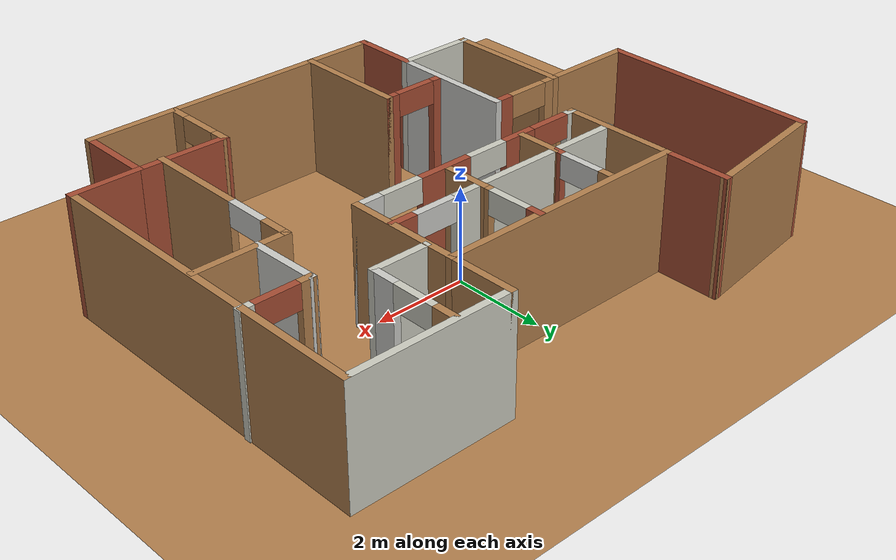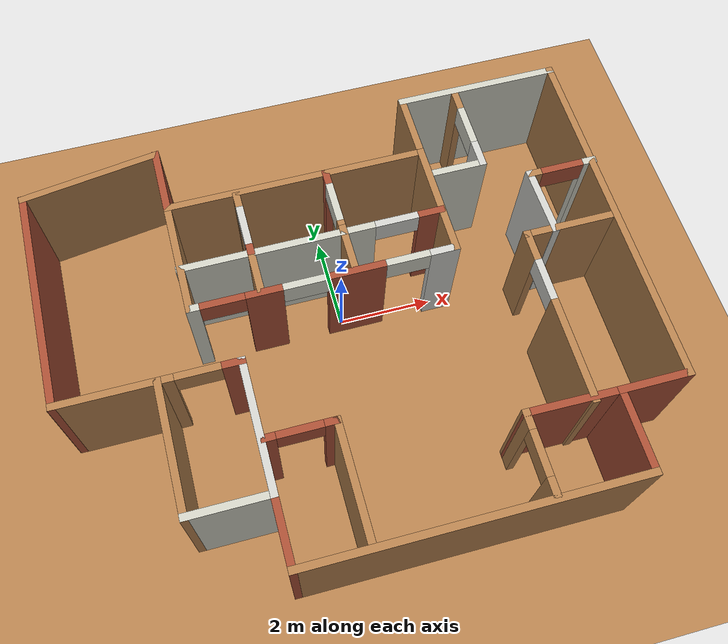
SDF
<sdf version="1.7">
 <world name="default">
  <plugin name="hello" filename="libhello.so"/>
  <light name="sun" type="directional">
   <pose>0 0 10 0 -0 0</pose>
   <diffuse>0.8 0.8 0.8 1</diffuse>
   <specular>0.2 0.2 0.2 1</specular>
   <attenuation>
    <range>1000</range>
    <constant>0.9</constant>
    <linear>0.01</linear>
    <quadratic>0.001</quadratic>
   </attenuation>
   <direction>-0.5 0.1 -0.9</direction>
   <spot><inner_angle>0</inner_angle><outer_angle>0</outer_angle><falloff>0</falloff></spot>
  </light>
  <model name="ground_plane">
   <static>1</static>
   <link name="link">
    <collision name="collision">
     <geometry><plane><normal>0 0 1</normal><size>16 14</size></plane></geometry>
     <surface><friction><ode><mu>100</mu><mu2>50</mu2></ode></friction></surface>
    </collision>
    <visual name="floor_tile_0">
     <cast_shadows>0</cast_shadows>
     <pose>-7.0 -6.5 0 0 -0 0</pose>
     <geometry><plane><normal>0 0 1</normal><size>2.0 2.0</size></plane></geometry>
     <material>
      <script><uri>file://media/materials/scripts/gazebo.material</uri><name>Gazebo/WoodFloor</name></script>
     </material>
    </visual>
    <visual name="floor_tile_1">
     <cast_shadows>0</cast_shadows>
     <pose>-5.0 -6.5 0 0 -0 0</pose>
     <geometry><plane><normal>0 0 1</normal><size>2.0 2.0</size></plane></geometry>
     <material>
      <script><uri>file://media/materials/scripts/gazebo.material</uri><name>Gazebo/WoodFloor</name></script>
     </material>
    </visual>
    <visual name="floor_tile_2">
     <cast_shadows>0</cast_shadows>
     <pose>-3.0 -6.5 0 0 -0 0</pose>
     <geometry><plane><normal>0 0 1</normal><size>2.0 2.0</size></plane></geometry>
     <material>
      <script><uri>file://media/materials/scripts/gazebo.material</uri><name>Gazebo/WoodFloor</name></script>
     </material>
    </visual>
    <visual name="floor_tile_3">
     <cast_shadows>0</cast_shadows>
     <pose>-1.0 -6.5 0 0 -0 0</pose>
     <geometry><plane><normal>0 0 1</normal><size>2.0 2.0</size></plane></geometry>
     <material>
      <script><uri>file://media/materials/scripts/gazebo.material</uri><name>Gazebo/WoodFloor</name></script>
     </material>
    </visual>
    <visual name="floor_tile_4">
     <cast_shadows>0</cast_shadows>
     <pose>1.0 -6.5 0 0 -0 0</pose>
     <geometry><plane><normal>0 0 1</normal><size>2.0 2.0</size></plane></geometry>
     <material>
      <script><uri>file://media/materials/scripts/gazebo.material</uri><name>Gazebo/WoodFloor</name></script>
     </material>
    </visual>
    <visual name="floor_tile_5">
     <cast_shadows>0</cast_shadows>
     <pose>3.0 -6.5 0 0 -0 0</pose>
     <geometry><plane><normal>0 0 1</normal><size>2.0 2.0</size></plane></geometry>
     <material>
      <script><uri>file://media/materials/scripts/gazebo.material</uri><name>Gazebo/WoodFloor</name></script>
     </material>
    </visual>
    <visual name="floor_tile_6">
     <cast_shadows>0</cast_shadows>
     <pose>5.0 -6.5 0 0 -0 0</pose>
     <geometry><plane><normal>0 0 1</normal><size>2.0 2.0</size></plane></geometry>
     <material>
      <script><uri>file://media/materials/scripts/gazebo.material</uri><name>Gazebo/WoodFloor</name></script>
     </material>
    </visual>
    <visual name="floor_tile_7">
     <cast_shadows>0</cast_shadows>
     <pose>7.0 -6.5 0 0 -0 0</pose>
     <geometry><plane><normal>0 0 1</normal><size>2.0 2.0</size></plane></geometry>
     <material>
      <script><uri>file://media/materials/scripts/gazebo.material</uri><name>Gazebo/WoodFloor</name></script>
     </material>
    </visual>
    <visual name="floor_tile_8">
     <cast_shadows>0</cast_shadows>
     <pose>-7.0 -4.5 0 0 -0 0</pose>
     <geometry><plane><normal>0 0 1</normal><size>2.0 2.0</size></plane></geometry>
     <material>
      <script><uri>file://media/materials/scripts/gazebo.material</uri><name>Gazebo/WoodFloor</name></script>
     </material>
    </visual>
    <visual name="floor_tile_9">
     <cast_shadows>0</cast_shadows>
     <pose>-5.0 -4.5 0 0 -0 0</pose>
     <geometry><plane><normal>0 0 1</normal><size>2.0 2.0</size></plane></geometry>
     <material>
      <script><uri>file://media/materials/scripts/gazebo.material</uri><name>Gazebo/WoodFloor</name></script>
     </material>
    </visual>
    <visual name="floor_tile_10">
     <cast_shadows>0</cast_shadows>
     <pose>-3.0 -4.5 0 0 -0 0</pose>
     <geometry><plane><normal>0 0 1</normal><size>2.0 2.0</size></plane></geometry>
     <material>
      <script><uri>file://media/materials/scripts/gazebo.material</uri><name>Gazebo/WoodFloor</name></script>
     </material>
    </visual>
    <visual name="floor_tile_11">
     <cast_shadows>0</cast_shadows>
     <pose>-1.0 -4.5 0 0 -0 0</pose>
     <geometry><plane><normal>0 0 1</normal><size>2.0 2.0</size></plane></geometry>
     <material>
      <script><uri>file://media/materials/scripts/gazebo.material</uri><name>Gazebo/WoodFloor</name></script>
     </material>
    </visual>
    <visual name="floor_tile_12">
     <cast_shadows>0</cast_shadows>
     <pose>1.0 -4.5 0 0 -0 0</pose>
     <geometry><plane><normal>0 0 1</normal><size>2.0 2.0</size></plane></geometry>
     <material>
      <script><uri>file://media/materials/scripts/gazebo.material</uri><name>Gazebo/WoodFloor</name></script>
     </material>
    </visual>
    <visual name="floor_tile_13">
     <cast_shadows>0</cast_shadows>
     <pose>3.0 -4.5 0 0 -0 0</pose>
     <geometry><plane><normal>0 0 1</normal><size>2.0 2.0</size></plane></geometry>
     <material>
      <script><uri>file://media/materials/scripts/gazebo.material</uri><name>Gazebo/WoodFloor</name></script>
     </material>
    </visual>
    <visual name="floor_tile_14">
     <cast_shadows>0</cast_shadows>
     <pose>5.0 -4.5 0 0 -0 0</pose>
     <geometry><plane><normal>0 0 1</normal><size>2.0 2.0</size></plane></geometry>
     <material>
      <script><uri>file://media/materials/scripts/gazebo.material</uri><name>Gazebo/WoodFloor</name></script>
     </material>
    </visual>
    <visual name="floor_tile_15">
     <cast_shadows>0</cast_shadows>
     <pose>7.0 -4.5 0 0 -0 0</pose>
     <geometry><plane><normal>0 0 1</normal><size>2.0 2.0</size></plane></geometry>
     <material>
      <script><uri>file://media/materials/scripts/gazebo.material</uri><name>Gazebo/WoodFloor</name></script>
     </material>
    </visual>
    <visual name="floor_tile_16">
     <cast_shadows>0</cast_shadows>
     <pose>-7.0 -2.5 0 0 -0 0</pose>
     <geometry><plane><normal>0 0 1</normal><size>2.0 2.0</size></plane></geometry>
     <material>
      <script><uri>file://media/materials/scripts/gazebo.material</uri><name>Gazebo/WoodFloor</name></script>
     </material>
    </visual>
    <visual name="floor_tile_17">
     <cast_shadows>0</cast_shadows>
     <pose>-5.0 -2.5 0 0 -0 0</pose>
     <geometry><plane><normal>0 0 1</normal><size>2.0 2.0</size></plane></geometry>
     <material>
      <script><uri>file://media/materials/scripts/gazebo.material</uri><name>Gazebo/WoodFloor</name></script>
     </material>
    </visual>
    <visual name="floor_tile_18">
     <cast_shadows>0</cast_shadows>
     <pose>-3.0 -2.5 0 0 -0 0</pose>
     <geometry><plane><normal>0 0 1</normal><size>2.0 2.0</size></plane></geometry>
     <material>
      <script><uri>file://media/materials/scripts/gazebo.material</uri><name>Gazebo/WoodFloor</name></script>
     </material>
    </visual>
    <visual name="floor_tile_19">
     <cast_shadows>0</cast_shadows>
     <pose>-1.0 -2.5 0 0 -0 0</pose>
     <geometry><plane><normal>0 0 1</normal><size>2.0 2.0</size></plane></geometry>
     <material>
      <script><uri>file://media/materials/scripts/gazebo.material</uri><name>Gazebo/WoodFloor</name></script>
     </material>
    </visual>
    <visual name="floor_tile_20">
     <cast_shadows>0</cast_shadows>
     <pose>1.0 -2.5 0 0 -0 0</pose>
     <geometry><plane><normal>0 0 1</normal><size>2.0 2.0</size></plane></geometry>
     <material>
      <script><uri>file://media/materials/scripts/gazebo.material</uri><name>Gazebo/WoodFloor</name></script>
     </material>
    </visual>
    <visual name="floor_tile_21">
     <cast_shadows>0</cast_shadows>
     <pose>3.0 -2.5 0 0 -0 0</pose>
     <geometry><plane><normal>0 0 1</normal><size>2.0 2.0</size></plane></geometry>
     <material>
      <script><uri>file://media/materials/scripts/gazebo.material</uri><name>Gazebo/WoodFloor</name></script>
     </material>
    </visual>
    <visual name="floor_tile_22">
     <cast_shadows>0</cast_shadows>
     <pose>5.0 -2.5 0 0 -0 0</pose>
     <geometry><plane><normal>0 0 1</normal><size>2.0 2.0</size></plane></geometry>
     <material>
      <script><uri>file://media/materials/scripts/gazebo.material</uri><name>Gazebo/WoodFloor</name></script>
     </material>
    </visual>
    <visual name="floor_tile_23">
     <cast_shadows>0</cast_shadows>
     <pose>7.0 -2.5 0 0 -0 0</pose>
     <geometry><plane><normal>0 0 1</normal><size>2.0 2.0</size></plane></geometry>
     <material>
      <script><uri>file://media/materials/scripts/gazebo.material</uri><name>Gazebo/WoodFloor</name></script>
     </material>
    </visual>
    <visual name="floor_tile_24">
     <cast_shadows>0</cast_shadows>
     <pose>-7.0 -0.5 0 0 -0 0</pose>
     <geometry><plane><normal>0 0 1</normal><size>2.0 2.0</size></plane></geometry>
     <material>
      <script><uri>file://media/materials/scripts/gazebo.material</uri><name>Gazebo/WoodFloor</name></script>
     </material>
    </visual>
    <visual name="floor_tile_25">
     <cast_shadows>0</cast_shadows>
     <pose>-5.0 -0.5 0 0 -0 0</pose>
     <geometry><plane><normal>0 0 1</normal><size>2.0 2.0</size></plane></geometry>
     <material>
      <script><uri>file://media/materials/scripts/gazebo.material</uri><name>Gazebo/WoodFloor</name></script>
     </material>
    </visual>
    <visual name="floor_tile_26">
     <cast_shadows>0</cast_shadows>
     <pose>-3.0 -0.5 0 0 -0 0</pose>
     <geometry><plane><normal>0 0 1</normal><size>2.0 2.0</size></plane></geometry>
     <material>
      <script><uri>file://media/materials/scripts/gazebo.material</uri><name>Gazebo/WoodFloor</name></script>
     </material>
    </visual>
    <visual name="floor_tile_27">
     <cast_shadows>0</cast_shadows>
     <pose>-1.0 -0.5 0 0 -0 0</pose>
     <geometry><plane><normal>0 0 1</normal><size>2.0 2.0</size></plane></geometry>
     <material>
      <script><uri>file://media/materials/scripts/gazebo.material</uri><name>Gazebo/WoodFloor</name></script>
     </material>
    </visual>
    <visual name="floor_tile_28">
     <cast_shadows>0</cast_shadows>
     <pose>1.0 -0.5 0 0 -0 0</pose>
     <geometry><plane><normal>0 0 1</normal><size>2.0 2.0</size></plane></geometry>
     <material>
      <script><uri>file://media/materials/scripts/gazebo.material</uri><name>Gazebo/WoodFloor</name></script>
     </material>
    </visual>
    <visual name="floor_tile_29">
     <cast_shadows>0</cast_shadows>
     <pose>3.0 -0.5 0 0 -0 0</pose>
     <geometry><plane><normal>0 0 1</normal><size>2.0 2.0</size></plane></geometry>
     <material>
      <script><uri>file://media/materials/scripts/gazebo.material</uri><name>Gazebo/WoodFloor</name></script>
     </material>
    </visual>
    <visual name="floor_tile_30">
     <cast_shadows>0</cast_shadows>
     <pose>5.0 -0.5 0 0 -0 0</pose>
     <geometry><plane><normal>0 0 1</normal><size>2.0 2.0</size></plane></geometry>
     <material>
      <script><uri>file://media/materials/scripts/gazebo.material</uri><name>Gazebo/WoodFloor</name></script>
     </material>
    </visual>
    <visual name="floor_tile_31">
     <cast_shadows>0</cast_shadows>
     <pose>7.0 -0.5 0 0 -0 0</pose>
     <geometry><plane><normal>0 0 1</normal><size>2.0 2.0</size></plane></geometry>
     <material>
      <script><uri>file://media/materials/scripts/gazebo.material</uri><name>Gazebo/WoodFloor</name></script>
     </material>
    </visual>
    <visual name="floor_tile_32">
     <cast_shadows>0</cast_shadows>
     <pose>-7.0 1.5 0 0 -0 0</pose>
     <geometry><plane><normal>0 0 1</normal><size>2.0 2.0</size></plane></geometry>
     <material>
      <script><uri>file://media/materials/scripts/gazebo.material</uri><name>Gazebo/WoodFloor</name></script>
     </material>
    </visual>
    <visual name="floor_tile_33">
     <cast_shadows>0</cast_shadows>
     <pose>-5.0 1.5 0 0 -0 0</pose>
     <geometry><plane><normal>0 0 1</normal><size>2.0 2.0</size></plane></geometry>
     <material>
      <script><uri>file://media/materials/scripts/gazebo.material</uri><name>Gazebo/WoodFloor</name></script>
     </material>
    </visual>
    <visual name="floor_tile_34">
     <cast_shadows>0</cast_shadows>
     <pose>-3.0 1.5 0 0 -0 0</pose>
     <geometry><plane><normal>0 0 1</normal><size>2.0 2.0</size></plane></geometry>
     <material>
      <script><uri>file://media/materials/scripts/gazebo.material</uri><name>Gazebo/WoodFloor</name></script>
     </material>
    </visual>
    <visual name="floor_tile_35">
     <cast_shadows>0</cast_shadows>
     <pose>-1.0 1.5 0 0 -0 0</pose>
     <geometry><plane><normal>0 0 1</normal><size>2.0 2.0</size></plane></geometry>
     <material>
      <script><uri>file://media/materials/scripts/gazebo.material</uri><name>Gazebo/WoodFloor</name></script>
     </material>
    </visual>
    <visual name="floor_tile_36">
     <cast_shadows>0</cast_shadows>
     <pose>1.0 1.5 0 0 -0 0</pose>
     <geometry><plane><normal>0 0 1</normal><size>2.0 2.0</size></plane></geometry>
     <material>
      <script><uri>file://media/materials/scripts/gazebo.material</uri><name>Gazebo/WoodFloor</name></script>
     </material>
    </visual>
    <visual name="floor_tile_37">
     <cast_shadows>0</cast_shadows>
     <pose>3.0 1.5 0 0 -0 0</pose>
     <geometry><plane><normal>0 0 1</normal><size>2.0 2.0</size></plane></geometry>
     <material>
      <script><uri>file://media/materials/scripts/gazebo.material</uri><name>Gazebo/WoodFloor</name></script>
     </material>
    </visual>
    <visual name="floor_tile_38">
     <cast_shadows>0</cast_shadows>
     <pose>5.0 1.5 0 0 -0 0</pose>
     <geometry><plane><normal>0 0 1</normal><size>2.0 2.0</size></plane></geometry>
     <material>
      <script><uri>file://media/materials/scripts/gazebo.material</uri><name>Gazebo/WoodFloor</name></script>
     </material>
    </visual>
    <visual name="floor_tile_39">
     <cast_shadows>0</cast_shadows>
     <pose>7.0 1.5 0 0 -0 0</pose>
     <geometry><plane><normal>0 0 1</normal><size>2.0 2.0</size></plane></geometry>
     <material>
      <script><uri>file://media/materials/scripts/gazebo.material</uri><name>Gazebo/WoodFloor</name></script>
     </material>
    </visual>
    <visual name="floor_tile_40">
     <cast_shadows>0</cast_shadows>
     <pose>-7.0 3.5 0 0 -0 0</pose>
     <geometry><plane><normal>0 0 1</normal><size>2.0 2.0</size></plane></geometry>
     <material>
      <script><uri>file://media/materials/scripts/gazebo.material</uri><name>Gazebo/WoodFloor</name></script>
     </material>
    </visual>
    <visual name="floor_tile_41">
     <cast_shadows>0</cast_shadows>
     <pose>-5.0 3.5 0 0 -0 0</pose>
     <geometry><plane><normal>0 0 1</normal><size>2.0 2.0</size></plane></geometry>
     <material>
      <script><uri>file://media/materials/scripts/gazebo.material</uri><name>Gazebo/WoodFloor</name></script>
     </material>
    </visual>
    <visual name="floor_tile_42">
     <cast_shadows>0</cast_shadows>
     <pose>-3.0 3.5 0 0 -0 0</pose>
     <geometry><plane><normal>0 0 1</normal><size>2.0 2.0</size></plane></geometry>
     <material>
      <script><uri>file://media/materials/scripts/gazebo.material</uri><name>Gazebo/WoodFloor</name></script>
     </material>
    </visual>
    <visual name="floor_tile_43">
     <cast_shadows>0</cast_shadows>
     <pose>-1.0 3.5 0 0 -0 0</pose>
     <geometry><plane><normal>0 0 1</normal><size>2.0 2.0</size></plane></geometry>
     <material>
      <script><uri>file://media/materials/scripts/gazebo.material</uri><name>Gazebo/WoodFloor</name></script>
     </material>
    </visual>
    <visual name="floor_tile_44">
     <cast_shadows>0</cast_shadows>
     <pose>1.0 3.5 0 0 -0 0</pose>
     <geometry><plane><normal>0 0 1</normal><size>2.0 2.0</size></plane></geometry>
     <material>
      <script><uri>file://media/materials/scripts/gazebo.material</uri><name>Gazebo/WoodFloor</name></script>
     </material>
    </visual>
    <visual name="floor_tile_45">
     <cast_shadows>0</cast_shadows>
     <pose>3.0 3.5 0 0 -0 0</pose>
     <geometry><plane><normal>0 0 1</normal><size>2.0 2.0</size></plane></geometry>
     <material>
      <script><uri>file://media/materials/scripts/gazebo.material</uri><name>Gazebo/WoodFloor</name></script>
     </material>
    </visual>
    <visual name="floor_tile_46">
     <cast_shadows>0</cast_shadows>
     <pose>5.0 3.5 0 0 -0 0</pose>
     <geometry><plane><normal>0 0 1</normal><size>2.0 2.0</size></plane></geometry>
     <material>
      <script><uri>file://media/materials/scripts/gazebo.material</uri><name>Gazebo/WoodFloor</name></script>
     </material>
    </visual>
    <visual name="floor_tile_47">
     <cast_shadows>0</cast_shadows>
     <pose>7.0 3.5 0 0 -0 0</pose>
     <geometry><plane><normal>0 0 1</normal><size>2.0 2.0</size></plane></geometry>
     <material>
      <script><uri>file://media/materials/scripts/gazebo.material</uri><name>Gazebo/WoodFloor</name></script>
     </material>
    </visual>
    <visual name="floor_tile_48">
     <cast_shadows>0</cast_shadows>
     <pose>-7.0 5.5 0 0 -0 0</pose>
     <geometry><plane><normal>0 0 1</normal><size>2.0 2.0</size></plane></geometry>
     <material>
      <script><uri>file://media/materials/scripts/gazebo.material</uri><name>Gazebo/WoodFloor</name></script>
     </material>
    </visual>
    <visual name="floor_tile_49">
     <cast_shadows>0</cast_shadows>
     <pose>-5.0 5.5 0 0 -0 0</pose>
     <geometry><plane><normal>0 0 1</normal><size>2.0 2.0</size></plane></geometry>
     <material>
      <script><uri>file://media/materials/scripts/gazebo.material</uri><name>Gazebo/WoodFloor</name></script>
     </material>
    </visual>
    <visual name="floor_tile_50">
     <cast_shadows>0</cast_shadows>
     <pose>-3.0 5.5 0 0 -0 0</pose>
     <geometry><plane><normal>0 0 1</normal><size>2.0 2.0</size></plane></geometry>
     <material>
      <script><uri>file://media/materials/scripts/gazebo.material</uri><name>Gazebo/WoodFloor</name></script>
     </material>
    </visual>
    <visual name="floor_tile_51">
     <cast_shadows>0</cast_shadows>
     <pose>-1.0 5.5 0 0 -0 0</pose>
     <geometry><plane><normal>0 0 1</normal><size>2.0 2.0</size></plane></geometry>
     <material>
      <script><uri>file://media/materials/scripts/gazebo.material</uri><name>Gazebo/WoodFloor</name></script>
     </material>
    </visual>
    <visual name="floor_tile_52">
     <cast_shadows>0</cast_shadows>
     <pose>1.0 5.5 0 0 -0 0</pose>
     <geometry><plane><normal>0 0 1</normal><size>2.0 2.0</size></plane></geometry>
     <material>
      <script><uri>file://media/materials/scripts/gazebo.material</uri><name>Gazebo/WoodFloor</name></script>
     </material>
    </visual>
    <visual name="floor_tile_53">
     <cast_shadows>0</cast_shadows>
     <pose>3.0 5.5 0 0 -0 0</pose>
     <geometry><plane><normal>0 0 1</normal><size>2.0 2.0</size></plane></geometry>
     <material>
      <script><uri>file://media/materials/scripts/gazebo.material</uri><name>Gazebo/WoodFloor</name></script>
     </material>
    </visual>
    <visual name="floor_tile_54">
     <cast_shadows>0</cast_shadows>
     <pose>5.0 5.5 0 0 -0 0</pose>
     <geometry><plane><normal>0 0 1</normal><size>2.0 2.0</size></plane></geometry>
     <material>
      <script><uri>file://media/materials/scripts/gazebo.material</uri><name>Gazebo/WoodFloor</name></script>
     </material>
    </visual>
    <visual name="floor_tile_55">
     <cast_shadows>0</cast_shadows>
     <pose>7.0 5.5 0 0 -0 0</pose>
     <geometry><plane><normal>0 0 1</normal><size>2.0 2.0</size></plane></geometry>
     <material>
      <script><uri>file://media/materials/scripts/gazebo.material</uri><name>Gazebo/WoodFloor</name></script>
     </material>
    </visual>
   </link>
  </model>
  <gravity>0 0 -9.8</gravity>
  <magnetic_field>6e-06 2.3e-05 -4.2e-05</magnetic_field>
  <atmosphere type="adiabatic"/>
  <physics name="default_physics" default="0" type="ode">
   <max_step_size>0.001</max_step_size>
   <real_time_factor>1</real_time_factor>
   <real_time_update_rate>1000</real_time_update_rate>
  </physics>
  <scene><ambient>0.4 0.4 0.4 1</ambient><background>0.7 0.7 0.7 1</background><shadows>1</shadows></scene>
  <spherical_coordinates>
   <surface_model>EARTH_WGS84</surface_model>
   <latitude_deg>0</latitude_deg>
   <longitude_deg>0</longitude_deg>
   <elevation>0</elevation>
   <heading_deg>0</heading_deg>
  </spherical_coordinates>
  <model name="office">
   <pose>-0.08568 -0.88911 0 0 -0 0</pose>
   <link name="Wall_0">
    <collision name="Wall_0_Collision">
     <geometry><box><size>4.75 0.15 2.5</size></box></geometry>
     <pose>0 0 1.25 0 -0 0</pose>
    </collision>
    <visual name="Wall_0_Visual">
     <pose>0 0 1.25 0 -0 0</pose>
     <geometry><box><size>4.75 0.15 2.5</size></box></geometry>
     <material>
      <script><uri>file://media/materials/scripts/gazebo.material</uri><name>Gazebo/Bricks</name></script>
      <ambient>0.78 0.56 0.42 1</ambient>
     </material>
     <meta><layer>0</layer></meta>
    </visual>
    <pose>-5.75692 1.77007 0 0 -0 1.5708</pose>
   </link>
   <link name="Wall_10">
    <collision name="Wall_10_Collision">
     <geometry><box><size>1.5 0.15 2.5</size></box></geometry>
     <pose>0 0 1.25 0 -0 0</pose>
    </collision>
    <visual name="Wall_10_Visual">
     <pose>0 0 1.25 0 -0 0</pose>
     <geometry><box><size>1.5 0.15 2.5</size></box></geometry>
     <material>
      <script><uri>file://media/materials/scripts/gazebo.material</uri><name>Gazebo/Bricks</name></script>
      <ambient>0.78 0.56 0.42 1</ambient>
     </material>
     <meta><layer>0</layer></meta>
    </visual>
    <pose>-2.21002 -3.80493 0 0 -0 1.5708</pose>
   </link>
   <link name="Wall_11">
    <collision name="Wall_11_Collision">
     <geometry><box><size>1.75 0.15 2.5</size></box></geometry>
     <pose>0 0 1.25 0 -0 0</pose>
    </collision>
    <visual name="Wall_11_Visual">
     <pose>0 0 1.25 0 -0 0</pose>
     <geometry><box><size>1.75 0.15 2.5</size></box></geometry>
     <material>
      <script><uri>file://media/materials/scripts/gazebo.material</uri><name>Gazebo/PaintedWall</name></script>
      <ambient>0.95 0.90 0.85 1</ambient>
     </material>
     <meta><layer>0</layer></meta>
    </visual>
    <pose>-3.01002 -3.12993 0 0 -0 3.14159</pose>
   </link>
   <link name="Wall_12">
    <collision name="Wall_12_Collision">
     <geometry><box><size>2.75 0.15 2.5</size></box></geometry>
     <pose>0 0 1.25 0 -0 0</pose>
    </collision>
    <visual name="Wall_12_Visual">
     <pose>0 0 1.25 0 -0 0</pose>
     <geometry><box><size>2.75 0.15 2.5</size></box></geometry>
     <material>
      <script><uri>file://media/materials/scripts/gazebo.material</uri><name>Gazebo/Wood</name></script>
      <ambient>0.91 0.76 0.55 1</ambient>
     </material>
     <meta><layer>0</layer></meta>
    </visual>
    <pose>-3.81002 -1.82993 0 0 -0 1.5708</pose>
   </link>
   <link name="Wall_13">
    <collision name="Wall_13_Collision">
     <geometry><box><size>2.10187 0.15 2.5</size></box></geometry>
     <pose>0 0 1.25 0 -0 0</pose>
    </collision>
    <visual name="Wall_13_Visual">
     <pose>0 0 1.25 0 -0 0</pose>
     <geometry><box><size>2.10187 0.15 2.5</size></box></geometry>
     <material>
      <script><uri>file://media/materials/scripts/gazebo.material</uri><name>Gazebo/Wood</name></script>
      <ambient>0.91 0.76 0.55 1</ambient>
     </material>
     <meta><layer>0</layer></meta>
    </visual>
    <pose>-4.78595 -0.529931 0 0 -0 3.14159</pose>
   </link>
   <link name="Wall_17">
    <collision name="Wall_17_Collision">
     <geometry><box><size>2.97536 0.15 2.5</size></box></geometry>
     <pose>0 0 1.25 0 -0 0</pose>
    </collision>
    <visual name="Wall_17_Visual">
     <pose>0 0 1.25 0 -0 0</pose>
     <geometry><box><size>2.97536 0.15 2.5</size></box></geometry>
     <material>
      <script><uri>file://media/materials/scripts/gazebo.material</uri><name>Gazebo/Wood</name></script>
      <ambient>0.91 0.76 0.55 1</ambient>
     </material>
     <meta><layer>0</layer></meta>
    </visual>
    <pose>-4.35847 4.27007 0 0 0 -2.99954</pose>
   </link>
   <link name="Wall_2">
    <collision name="Wall_2_Collision">
     <geometry><box><size>1.5 0.15 2.5</size></box></geometry>
     <pose>0 0 1.25 0 -0 0</pose>
    </collision>
    <visual name="Wall_2_Visual">
     <pose>0 0 1.25 0 -0 0</pose>
     <geometry><box><size>1.5 0.15 2.5</size></box></geometry>
     <material>
      <script><uri>file://media/materials/scripts/gazebo.material</uri><name>Gazebo/Bricks</name></script>
      <ambient>0.78 0.56 0.42 1</ambient>
     </material>
     <meta><layer>0</layer></meta>
    </visual>
    <pose>-2.96002 3.79507 0 0 0 -1.5708</pose>
   </link>
   <link name="Wall_21">
    <pose>-3.01002 -0.529931 0 0 -0 0</pose>
    <visual name="Wall_21_Visual_0">
     <pose>-0.682654 0 1.25 0 -0 0</pose>
     <geometry><box><size>0.384693 0.15 2.5</size></box></geometry>
     <material>
      <script><uri>file://media/materials/scripts/gazebo.material</uri><name>Gazebo/WoodFloor</name></script>
      <ambient>0.80 0.65 0.45 1</ambient>
     </material>
     <meta><layer>0</layer></meta>
    </visual>
    <collision name="Wall_21_Collision_0">
     <geometry><box><size>0.384693 0.15 2.5</size></box></geometry>
     <pose>-0.682654 0 1.25 0 -0 0</pose>
    </collision>
    <visual name="Wall_21_Visual_1">
     <pose>0.642346 0 1.25 0 -0 0</pose>
     <geometry><box><size>0.465307 0.15 2.5</size></box></geometry>
     <material>
      <script><uri>file://media/materials/scripts/gazebo.material</uri><name>Gazebo/Bricks</name></script>
      <ambient>0.78 0.56 0.42 1</ambient>
     </material>
     <meta><layer>0</layer></meta>
    </visual>
    <collision name="Wall_21_Collision_1">
     <geometry><box><size>0.465307 0.15 2.5</size></box></geometry>
     <pose>0.642346 0 1.25 0 -0 0</pose>
    </collision>
    <visual name="Wall_21_Visual_2">
     <pose>-0.040307 0 2.25 0 -0 0</pose>
     <geometry><box><size>0.9 0.15 0.5</size></box></geometry>
     <material>
      <script><uri>file://media/materials/scripts/gazebo.material</uri><name>Gazebo/WoodFloor</name></script>
      <ambient>0.80 0.65 0.45 1</ambient>
     </material>
     <meta><layer>0</layer></meta>
    </visual>
    <collision name="Wall_21_Collision_2">
     <geometry><box><size>0.9 0.15 0.5</size></box></geometry>
     <pose>-0.040307 0 2.25 0 -0 0</pose>
    </collision>
   </link>
   <link name="Wall_22">
    <collision name="Wall_22_Collision">
     <geometry><box><size>2.75 0.15 2.5</size></box></geometry>
     <pose>0 0 1.25 0 -0 0</pose>
    </collision>
    <visual name="Wall_22_Visual">
     <pose>0 0 1.25 0 -0 0</pose>
     <geometry><box><size>2.75 0.15 2.5</size></box></geometry>
     <material>
      <script><uri>file://media/materials/scripts/gazebo.material</uri><name>Gazebo/CeilingTiled</name></script>
      <ambient>0.85 0.85 0.85 1</ambient>
     </material>
     <meta><layer>0</layer></meta>
    </visual>
    <pose>-2.21002 -1.82993 0 0 0 -1.5708</pose>
   </link>
   <link name="Wall_24">
    <pose>-1.46934 -2.107 0 0 -0 0</pose>
    <visual name="Wall_24_Visual_0">
     <pose>-0.609939 0 1.25 0 -0 0</pose>
     <geometry><box><size>0.280122 0.15 2.5</size></box></geometry>
     <material>
      <script><uri>file://media/materials/scripts/gazebo.material</uri><name>Gazebo/Bricks</name></script>
      <ambient>0.78 0.56 0.42 1</ambient>
     </material>
     <meta><layer>0</layer></meta>
    </visual>
    <collision name="Wall_24_Collision_0">
     <geometry><box><size>0.280122 0.15 2.5</size></box></geometry>
     <pose>-0.609939 0 1.25 0 -0 0</pose>
    </collision>
    <visual name="Wall_24_Visual_1">
     <pose>0.590061 0 1.25 0 -0 0</pose>
     <geometry><box><size>0.319878 0.15 2.5</size></box></geometry>
     <material>
      <script><uri>file://media/materials/scripts/gazebo.material</uri><name>Gazebo/Bricks</name></script>
      <ambient>0.78 0.56 0.42 1</ambient>
     </material>
     <meta><layer>0</layer></meta>
    </visual>
    <collision name="Wall_24_Collision_1">
     <geometry><box><size>0.319878 0.15 2.5</size></box></geometry>
     <pose>0.590061 0 1.25 0 -0 0</pose>
    </collision>
    <visual name="Wall_24_Visual_2">
     <pose>-0.019878 0 2.25 0 -0 0</pose>
     <geometry><box><size>0.9 0.15 0.5</size></box></geometry>
     <material>
      <script><uri>file://media/materials/scripts/gazebo.material</uri><name>Gazebo/Bricks</name></script>
      <ambient>0.78 0.56 0.42 1</ambient>
     </material>
     <meta><layer>0</layer></meta>
    </visual>
    <collision name="Wall_24_Collision_2">
     <geometry><box><size>0.9 0.15 0.5</size></box></geometry>
     <pose>-0.019878 0 2.25 0 -0 0</pose>
    </collision>
   </link>
   <link name="Wall_25">
    <collision name="Wall_25_Collision">
     <geometry><box><size>2.5 0.15 2.5</size></box></geometry>
     <pose>0 0 1.25 0 -0 0</pose>
    </collision>
    <visual name="Wall_25_Visual">
     <pose>0 0 1.25 0 -0 0</pose>
     <geometry><box><size>2.5 0.15 2.5</size></box></geometry>
     <material>
      <script><uri>file://media/materials/scripts/gazebo.material</uri><name>Gazebo/Wood</name></script>
      <ambient>0.91 0.76 0.55 1</ambient>
     </material>
     <meta><layer>0</layer></meta>
    </visual>
    <pose>-0.794339 -3.282 0 0 0 -1.5708</pose>
   </link>
   <link name="Wall_27">
    <pose>2.54652 -3.6539 0 0 -0 1.5708</pose>
    <visual name="Wall_27_Visual_0">
     <pose>-0.65023 0 1.25 0 -0 0</pose>
     <geometry><box><size>0.449541 0.15 2.5</size></box></geometry>
     <material>
      <script><uri>file://media/materials/scripts/gazebo.material</uri><name>Gazebo/Wood</name></script>
      <ambient>0.91 0.76 0.55 1</ambient>
     </material>
     <meta><layer>0</layer></meta>
    </visual>
    <collision name="Wall_27_Collision_0">
     <geometry><box><size>0.449541 0.15 2.5</size></box></geometry>
     <pose>-0.65023 0 1.25 0 -0 0</pose>
    </collision>
    <visual name="Wall_27_Visual_1">
     <pose>0.67477 0 1.25 0 -0 0</pose>
     <geometry><box><size>0.400459 0.15 2.5</size></box></geometry>
     <material>
      <script><uri>file://media/materials/scripts/gazebo.material</uri><name>Gazebo/WoodFloor</name></script>
      <ambient>0.80 0.65 0.45 1</ambient>
     </material>
     <meta><layer>0</layer></meta>
    </visual>
    <collision name="Wall_27_Collision_1">
     <geometry><box><size>0.400459 0.15 2.5</size></box></geometry>
     <pose>0.67477 0 1.25 0 -0 0</pose>
    </collision>
    <visual name="Wall_27_Visual_2">
     <pose>0.024541 0 2.25 0 -0 0</pose>
     <geometry><box><size>0.9 0.15 0.5</size></box></geometry>
     <material>
      <script><uri>file://media/materials/scripts/gazebo.material</uri><name>Gazebo/WoodFloor</name></script>
      <ambient>0.80 0.65 0.45 1</ambient>
     </material>
     <meta><layer>0</layer></meta>
    </visual>
    <collision name="Wall_27_Collision_2">
     <geometry><box><size>0.9 0.15 0.5</size></box></geometry>
     <pose>0.024541 0 2.25 0 -0 0</pose>
    </collision>
   </link>
   <link name="Wall_28">
    <collision name="Wall_28_Collision">
     <geometry><box><size>1.99365 0.15 2.5</size></box></geometry>
     <pose>0 0 1.25 0 -0 0</pose>
    </collision>
    <visual name="Wall_28_Visual">
     <pose>0 0 1.25 0 -0 0</pose>
     <geometry><box><size>1.99365 0.15 2.5</size></box></geometry>
     <material>
      <script><uri>file://media/materials/scripts/gazebo.material</uri><name>Gazebo/Bricks</name></script>
      <ambient>0.78 0.56 0.42 1</ambient>
     </material>
     <meta><layer>0</layer></meta>
    </visual>
    <pose>3.46825 -2.86691 0 0 0 -0.014121</pose>
   </link>
   <link name="Wall_3">
    <collision name="Wall_3_Collision">
     <geometry><box><size>5.5 0.15 2.5</size></box></geometry>
     <pose>0 0 1.25 0 -0 0</pose>
    </collision>
    <visual name="Wall_3_Visual">
     <pose>0 0 1.25 0 -0 0</pose>
     <geometry><box><size>5.5 0.15 2.5</size></box></geometry>
     <material>
      <script><uri>file://media/materials/scripts/gazebo.material</uri><name>Gazebo/WoodFloor</name></script>
      <ambient>0.80 0.65 0.45 1</ambient>
     </material>
     <meta><layer>0</layer></meta>
    </visual>
    <pose>-0.285016 3.12007 0 0 -0 0</pose>
   </link>
   <link name="Wall_30">
    <pose>3.8558 -1.1198 0 0 -0 1.5708</pose>
    <visual name="Wall_30_Visual_0">
     <pose>-0.78578 0 1.25 0 -0 0</pose>
     <geometry><box><size>2.17844 0.15 2.5</size></box></geometry>
     <material>
      <script><uri>file://media/materials/scripts/gazebo.material</uri><name>Gazebo/Wood</name></script>
      <ambient>0.91 0.76 0.55 1</ambient>
     </material>
     <meta><layer>0</layer></meta>
    </visual>
    <collision name="Wall_30_Collision_0">
     <geometry><box><size>2.17844 0.15 2.5</size></box></geometry>
     <pose>-0.78578 0 1.25 0 -0 0</pose>
    </collision>
    <visual name="Wall_30_Visual_1">
     <pose>1.53922 0 1.25 0 -0 0</pose>
     <geometry><box><size>0.671559 0.15 2.5</size></box></geometry>
     <material>
      <script><uri>file://media/materials/scripts/gazebo.material</uri><name>Gazebo/WoodFloor</name></script>
      <ambient>0.80 0.65 0.45 1</ambient>
     </material>
     <meta><layer>0</layer></meta>
    </visual>
    <collision name="Wall_30_Collision_1">
     <geometry><box><size>0.671559 0.15 2.5</size></box></geometry>
     <pose>1.53922 0 1.25 0 -0 0</pose>
    </collision>
    <visual name="Wall_30_Visual_2">
     <pose>0.753441 0 2.25 0 -0 0</pose>
     <geometry><box><size>0.9 0.15 0.5</size></box></geometry>
     <material>
      <script><uri>file://media/materials/scripts/gazebo.material</uri><name>Gazebo/CeilingTiled</name></script>
      <ambient>0.85 0.85 0.85 1</ambient>
     </material>
     <meta><layer>0</layer></meta>
    </visual>
    <collision name="Wall_30_Collision_2">
     <geometry><box><size>0.9 0.15 0.5</size></box></geometry>
     <pose>0.753441 0 2.25 0 -0 0</pose>
    </collision>
   </link>
   <link name="Wall_31">
    <collision name="Wall_31_Collision">
     <geometry><box><size>2 0.15 2.5</size></box></geometry>
     <pose>0 0 1.25 0 -0 0</pose>
    </collision>
    <visual name="Wall_31_Visual">
     <pose>0 0 1.25 0 -0 0</pose>
     <geometry><box><size>2 0.15 2.5</size></box></geometry>
     <material>
      <script><uri>file://media/materials/scripts/gazebo.material</uri><name>Gazebo/Wood</name></script>
      <ambient>0.91 0.76 0.55 1</ambient>
     </material>
     <meta><layer>0</layer></meta>
    </visual>
    <pose>4.7808 0.680202 0 0 -0 0</pose>
   </link>
   <link name="Wall_33">
    <collision name="Wall_33_Collision">
     <geometry><box><size>1.5 0.15 2.5</size></box></geometry>
     <pose>0 0 1.25 0 -0 0</pose>
    </collision>
    <visual name="Wall_33_Visual">
     <pose>0 0 1.25 0 -0 0</pose>
     <geometry><box><size>1.5 0.15 2.5</size></box></geometry>
     <material>
      <script><uri>file://media/materials/scripts/gazebo.material</uri><name>Gazebo/CeilingTiled</name></script>
      <ambient>0.85 0.85 0.85 1</ambient>
     </material>
     <meta><layer>0</layer></meta>
    </visual>
    <pose>4.41678 1.34607 0 0 -0 1.5967</pose>
   </link>
   <link name="Wall_34">
    <pose>5.09178 2.02107 0 0 -0 0</pose>
    <visual name="Wall_34_Visual_0">
     <pose>-0.597678 0 1.25 0 -0 0</pose>
     <geometry><box><size>0.304643 0.15 2.5</size></box></geometry>
     <material>
      <script><uri>file://media/materials/scripts/gazebo.material</uri><name>Gazebo/WoodFloor</name></script>
      <ambient>0.80 0.65 0.45 1</ambient>
     </material>
     <meta><layer>0</layer></meta>
    </visual>
    <collision name="Wall_34_Collision_0">
     <geometry><box><size>0.304643 0.15 2.5</size></box></geometry>
     <pose>-0.597678 0 1.25 0 -0 0</pose>
    </collision>
    <visual name="Wall_34_Visual_1">
     <pose>0.602322 0 1.25 0 -0 0</pose>
     <geometry><box><size>0.295357 0.15 2.5</size></box></geometry>
     <material>
      <script><uri>file://media/materials/scripts/gazebo.material</uri><name>Gazebo/PaintedWall</name></script>
      <ambient>0.95 0.90 0.85 1</ambient>
     </material>
     <meta><layer>0</layer></meta>
    </visual>
    <collision name="Wall_34_Collision_1">
     <geometry><box><size>0.295357 0.15 2.5</size></box></geometry>
     <pose>0.602322 0 1.25 0 -0 0</pose>
    </collision>
    <visual name="Wall_34_Visual_2">
     <pose>0.004643 0 2.25 0 -0 0</pose>
     <geometry><box><size>0.9 0.15 0.5</size></box></geometry>
     <material>
      <script><uri>file://media/materials/scripts/gazebo.material</uri><name>Gazebo/Bricks</name></script>
      <ambient>0.78 0.56 0.42 1</ambient>
     </material>
     <meta><layer>0</layer></meta>
    </visual>
    <collision name="Wall_34_Collision_2">
     <geometry><box><size>0.9 0.15 0.5</size></box></geometry>
     <pose>0.004643 0 2.25 0 -0 0</pose>
    </collision>
   </link>
   <link name="Wall_36">
    <pose>3.54343 3.47496 0 0 0 -1.5708</pose>
    <visual name="Wall_36_Visual_0">
     <pose>-0.754697 0 1.25 0 -0 0</pose>
     <geometry><box><size>0.490606 0.15 2.5</size></box></geometry>
     <material>
      <script><uri>file://media/materials/scripts/gazebo.material</uri><name>Gazebo/Wood</name></script>
      <ambient>0.91 0.76 0.55 1</ambient>
     </material>
     <meta><layer>0</layer></meta>
    </visual>
    <collision name="Wall_36_Collision_0">
     <geometry><box><size>0.490606 0.15 2.5</size></box></geometry>
     <pose>-0.754697 0 1.25 0 -0 0</pose>
    </collision>
    <visual name="Wall_36_Visual_1">
     <pose>0.695303 0 1.25 0 -0 0</pose>
     <geometry><box><size>0.609394 0.15 2.5</size></box></geometry>
     <material>
      <script><uri>file://media/materials/scripts/gazebo.material</uri><name>Gazebo/CeilingTiled</name></script>
      <ambient>0.85 0.85 0.85 1</ambient>
     </material>
     <meta><layer>0</layer></meta>
    </visual>
    <collision name="Wall_36_Collision_1">
     <geometry><box><size>0.609394 0.15 2.5</size></box></geometry>
     <pose>0.695303 0 1.25 0 -0 0</pose>
    </collision>
    <visual name="Wall_36_Visual_2">
     <pose>-0.059394 0 2.25 0 -0 0</pose>
     <geometry><box><size>0.9 0.15 0.5</size></box></geometry>
     <material>
      <script><uri>file://media/materials/scripts/gazebo.material</uri><name>Gazebo/PaintedWall</name></script>
      <ambient>0.95 0.90 0.85 1</ambient>
     </material>
     <meta><layer>0</layer></meta>
    </visual>
    <collision name="Wall_36_Collision_2">
     <geometry><box><size>0.9 0.15 0.5</size></box></geometry>
     <pose>-0.059394 0 2.25 0 -0 0</pose>
    </collision>
   </link>
   <link name="Wall_37">
    <collision name="Wall_37_Collision">
     <geometry><box><size>1.25 0.15 2.5</size></box></geometry>
     <pose>0 0 1.25 0 -0 0</pose>
    </collision>
    <visual name="Wall_37_Visual">
     <pose>0 0 1.25 0 -0 0</pose>
     <geometry><box><size>1.25 0.15 2.5</size></box></geometry>
     <material>
      <script><uri>file://media/materials/scripts/gazebo.material</uri><name>Gazebo/PaintedWall</name></script>
      <ambient>0.95 0.90 0.85 1</ambient>
     </material>
     <meta><layer>0</layer></meta>
    </visual>
    <pose>2.99343 2.54996 0 0 -0 3.14159</pose>
   </link>
   <link name="Wall_39">
    <collision name="Wall_39_Collision">
     <geometry><box><size>2.5 0.15 2.5</size></box></geometry>
     <pose>0 0 1.25 0 -0 0</pose>
    </collision>
    <visual name="Wall_39_Visual">
     <pose>0 0 1.25 0 -0 0</pose>
     <geometry><box><size>2.5 0.15 2.5</size></box></geometry>
     <material>
      <script><uri>file://media/materials/scripts/gazebo.material</uri><name>Gazebo/Wood</name></script>
      <ambient>0.91 0.76 0.55 1</ambient>
     </material>
     <meta><layer>0</layer></meta>
    </visual>
    <pose>-2.96002 1.94507 0 0 0 -1.5708</pose>
   </link>
   <link name="Wall_4">
    <collision name="Wall_4_Collision">
     <geometry><box><size>1.5 0.15 2.5</size></box></geometry>
     <pose>0 0 1.25 0 -0 0</pose>
    </collision>
    <visual name="Wall_4_Visual">
     <pose>0 0 1.25 0 -0 0</pose>
     <geometry><box><size>1.5 0.15 2.5</size></box></geometry>
     <material>
      <script><uri>file://media/materials/scripts/gazebo.material</uri><name>Gazebo/Wood</name></script>
      <ambient>0.91 0.76 0.55 1</ambient>
     </material>
     <meta><layer>0</layer></meta>
    </visual>
    <pose>2.38998 3.79507 0 0 -0 1.5708</pose>
   </link>
   <link name="Wall_40">
    <pose>-0.285016 0.770069 0 0 -0 0</pose>
    <visual name="Wall_40_Visual_0">
     <pose>-2.61536 0 1.25 0 -0 0</pose>
     <geometry><box><size>0.269275 0.15 2.5</size></box></geometry>
     <material>
      <script><uri>file://media/materials/scripts/gazebo.material</uri><name>Gazebo/PaintedWall</name></script>
      <ambient>0.95 0.90 0.85 1</ambient>
     </material>
     <meta><layer>0</layer></meta>
    </visual>
    <collision name="Wall_40_Collision_0">
     <geometry><box><size>0.269275 0.15 2.5</size></box></geometry>
     <pose>-2.61536 0 1.25 0 -0 0</pose>
    </collision>
    <visual name="Wall_40_Visual_1">
     <pose>-1.20869 0 1.25 0 -0 0</pose>
     <geometry><box><size>0.744066 0.15 2.5</size></box></geometry>
     <material>
      <script><uri>file://media/materials/scripts/gazebo.material</uri><name>Gazebo/Bricks</name></script>
      <ambient>0.78 0.56 0.42 1</ambient>
     </material>
     <meta><layer>0</layer></meta>
    </visual>
    <collision name="Wall_40_Collision_1">
     <geometry><box><size>0.744066 0.15 2.5</size></box></geometry>
     <pose>-1.20869 0 1.25 0 -0 0</pose>
    </collision>
    <visual name="Wall_40_Visual_2">
     <pose>0.654 0 1.25 0 -0 0</pose>
     <geometry><box><size>1.18132 0.15 2.5</size></box></geometry>
     <material>
      <script><uri>file://media/materials/scripts/gazebo.material</uri><name>Gazebo/Bricks</name></script>
      <ambient>0.78 0.56 0.42 1</ambient>
     </material>
     <meta><layer>0</layer></meta>
    </visual>
    <collision name="Wall_40_Collision_2">
     <geometry><box><size>1.18132 0.15 2.5</size></box></geometry>
     <pose>0.654 0 1.25 0 -0 0</pose>
    </collision>
    <visual name="Wall_40_Visual_3">
     <pose>2.44733 0 1.25 0 -0 0</pose>
     <geometry><box><size>0.605341 0.15 2.5</size></box></geometry>
     <material>
      <script><uri>file://media/materials/scripts/gazebo.material</uri><name>Gazebo/CeilingTiled</name></script>
      <ambient>0.85 0.85 0.85 1</ambient>
     </material>
     <meta><layer>0</layer></meta>
    </visual>
    <collision name="Wall_40_Collision_3">
     <geometry><box><size>0.605341 0.15 2.5</size></box></geometry>
     <pose>2.44733 0 1.25 0 -0 0</pose>
    </collision>
    <visual name="Wall_40_Visual_4">
     <pose>-2.03072 0 2.25 0 -0 0</pose>
     <geometry><box><size>0.9 0.15 0.5</size></box></geometry>
     <material>
      <script><uri>file://media/materials/scripts/gazebo.material</uri><name>Gazebo/Bricks</name></script>
      <ambient>0.78 0.56 0.42 1</ambient>
     </material>
     <meta><layer>0</layer></meta>
    </visual>
    <collision name="Wall_40_Collision_4">
     <geometry><box><size>0.9 0.15 0.5</size></box></geometry>
     <pose>-2.03072 0 2.25 0 -0 0</pose>
    </collision>
    <visual name="Wall_40_Visual_5">
     <pose>-0.386659 0 2.25 0 -0 0</pose>
     <geometry><box><size>0.9 0.15 0.5</size></box></geometry>
     <material>
      <script><uri>file://media/materials/scripts/gazebo.material</uri><name>Gazebo/PaintedWall</name></script>
      <ambient>0.95 0.90 0.85 1</ambient>
     </material>
     <meta><layer>0</layer></meta>
    </visual>
    <collision name="Wall_40_Collision_5">
     <geometry><box><size>0.9 0.15 0.5</size></box></geometry>
     <pose>-0.386659 0 2.25 0 -0 0</pose>
    </collision>
    <visual name="Wall_40_Visual_6">
     <pose>1.69466 0 2.25 0 -0 0</pose>
     <geometry><box><size>0.9 0.15 0.5</size></box></geometry>
     <material>
      <script><uri>file://media/materials/scripts/gazebo.material</uri><name>Gazebo/PaintedWall</name></script>
      <ambient>0.95 0.90 0.85 1</ambient>
     </material>
     <meta><layer>0</layer></meta>
    </visual>
    <collision name="Wall_40_Collision_6">
     <geometry><box><size>0.9 0.15 0.5</size></box></geometry>
     <pose>1.69466 0 2.25 0 -0 0</pose>
    </collision>
   </link>
   <link name="Wall_41">
    <collision name="Wall_41_Collision">
     <geometry><box><size>2.5 0.15 2.5</size></box></geometry>
     <pose>0 0 1.25 0 -0 0</pose>
    </collision>
    <visual name="Wall_41_Visual">
     <pose>0 0 1.25 0 -0 0</pose>
     <geometry><box><size>2.5 0.15 2.5</size></box></geometry>
     <material>
      <script><uri>file://media/materials/scripts/gazebo.material</uri><name>Gazebo/WoodFloor</name></script>
      <ambient>0.80 0.65 0.45 1</ambient>
     </material>
     <meta><layer>0</layer></meta>
    </visual>
    <pose>2.38998 1.94507 0 0 -0 1.5708</pose>
   </link>
   <link name="Wall_43">
    <pose>-0.305363 1.67151 0 0 -0 0</pose>
    <visual name="Wall_43_Visual_0">
     <pose>-0.727606 0 1.25 0 -0 0</pose>
     <geometry><box><size>4.04479 0.15 2.5</size></box></geometry>
     <material>
      <script><uri>file://media/materials/scripts/gazebo.material</uri><name>Gazebo/PaintedWall</name></script>
      <ambient>0.95 0.90 0.85 1</ambient>
     </material>
     <meta><layer>0</layer></meta>
    </visual>
    <collision name="Wall_43_Collision_0">
     <geometry><box><size>4.04479 0.15 2.5</size></box></geometry>
     <pose>-0.727606 0 1.25 0 -0 0</pose>
    </collision>
    <visual name="Wall_43_Visual_1">
     <pose>2.47239 0 1.25 0 -0 0</pose>
     <geometry><box><size>0.555213 0.15 2.5</size></box></geometry>
     <material>
      <script><uri>file://media/materials/scripts/gazebo.material</uri><name>Gazebo/Bricks</name></script>
      <ambient>0.78 0.56 0.42 1</ambient>
     </material>
     <meta><layer>0</layer></meta>
    </visual>
    <collision name="Wall_43_Collision_1">
     <geometry><box><size>0.555213 0.15 2.5</size></box></geometry>
     <pose>2.47239 0 1.25 0 -0 0</pose>
    </collision>
    <visual name="Wall_43_Visual_2">
     <pose>1.74479 0 2.25 0 -0 0</pose>
     <geometry><box><size>0.9 0.15 0.5</size></box></geometry>
     <material>
      <script><uri>file://media/materials/scripts/gazebo.material</uri><name>Gazebo/CeilingTiled</name></script>
      <ambient>0.85 0.85 0.85 1</ambient>
     </material>
     <meta><layer>0</layer></meta>
    </visual>
    <collision name="Wall_43_Collision_2">
     <geometry><box><size>0.9 0.15 0.5</size></box></geometry>
     <pose>1.74479 0 2.25 0 -0 0</pose>
    </collision>
   </link>
   <link name="Wall_45">
    <pose>-1.54618 2.37823 0 0 0 -1.5708</pose>
    <visual name="Wall_45_Visual_0">
     <pose>-0.574315 0 1.25 0 -0 0</pose>
     <geometry><box><size>0.351371 0.15 2.5</size></box></geometry>
     <material>
      <script><uri>file://media/materials/scripts/gazebo.material</uri><name>Gazebo/WoodFloor</name></script>
      <ambient>0.80 0.65 0.45 1</ambient>
     </material>
     <meta><layer>0</layer></meta>
    </visual>
    <collision name="Wall_45_Collision_0">
     <geometry><box><size>0.351371 0.15 2.5</size></box></geometry>
     <pose>-0.574315 0 1.25 0 -0 0</pose>
    </collision>
    <visual name="Wall_45_Visual_1">
     <pose>0.625685 0 1.25 0 -0 0</pose>
     <geometry><box><size>0.248629 0.15 2.5</size></box></geometry>
     <material>
      <script><uri>file://media/materials/scripts/gazebo.material</uri><name>Gazebo/Bricks</name></script>
      <ambient>0.78 0.56 0.42 1</ambient>
     </material>
     <meta><layer>0</layer></meta>
    </visual>
    <collision name="Wall_45_Collision_1">
     <geometry><box><size>0.248629 0.15 2.5</size></box></geometry>
     <pose>0.625685 0 1.25 0 -0 0</pose>
    </collision>
    <visual name="Wall_45_Visual_2">
     <pose>0.051371 0 2.25 0 -0 0</pose>
     <geometry><box><size>0.9 0.15 0.5</size></box></geometry>
     <material>
      <script><uri>file://media/materials/scripts/gazebo.material</uri><name>Gazebo/CeilingTiled</name></script>
      <ambient>0.85 0.85 0.85 1</ambient>
     </material>
     <meta><layer>0</layer></meta>
    </visual>
    <collision name="Wall_45_Collision_2">
     <geometry><box><size>0.9 0.15 0.5</size></box></geometry>
     <pose>0.051371 0 2.25 0 -0 0</pose>
    </collision>
   </link>
   <link name="Wall_47">
    <pose>0.342749 2.4307 0 0 0 -1.5708</pose>
    <visual name="Wall_47_Visual_0">
     <pose>-0.58258 0 1.25 0 -0 0</pose>
     <geometry><box><size>0.334841 0.15 2.5</size></box></geometry>
     <material>
      <script><uri>file://media/materials/scripts/gazebo.material</uri><name>Gazebo/Bricks</name></script>
      <ambient>0.78 0.56 0.42 1</ambient>
     </material>
     <meta><layer>0</layer></meta>
    </visual>
    <collision name="Wall_47_Collision_0">
     <geometry><box><size>0.334841 0.15 2.5</size></box></geometry>
     <pose>-0.58258 0 1.25 0 -0 0</pose>
    </collision>
    <visual name="Wall_47_Visual_1">
     <pose>0.61742 0 1.25 0 -0 0</pose>
     <geometry><box><size>0.265159 0.15 2.5</size></box></geometry>
     <material>
      <script><uri>file://media/materials/scripts/gazebo.material</uri><name>Gazebo/WoodFloor</name></script>
      <ambient>0.80 0.65 0.45 1</ambient>
     </material>
     <meta><layer>0</layer></meta>
    </visual>
    <collision name="Wall_47_Collision_1">
     <geometry><box><size>0.265159 0.15 2.5</size></box></geometry>
     <pose>0.61742 0 1.25 0 -0 0</pose>
    </collision>
    <visual name="Wall_47_Visual_2">
     <pose>0.034841 0 2.25 0 -0 0</pose>
     <geometry><box><size>0.9 0.15 0.5</size></box></geometry>
     <material>
      <script><uri>file://media/materials/scripts/gazebo.material</uri><name>Gazebo/PaintedWall</name></script>
      <ambient>0.95 0.90 0.85 1</ambient>
     </material>
     <meta><layer>0</layer></meta>
    </visual>
    <collision name="Wall_47_Collision_2">
     <geometry><box><size>0.9 0.15 0.5</size></box></geometry>
     <pose>0.034841 0 2.25 0 -0 0</pose>
    </collision>
   </link>
   <link name="Wall_49">
    <collision name="Wall_49_Collision">
     <geometry><box><size>1 0.15 2.5</size></box></geometry>
     <pose>0 0 1.25 0 -0 0</pose>
    </collision>
    <visual name="Wall_49_Visual">
     <pose>0 0 1.25 0 -0 0</pose>
     <geometry><box><size>1 0.15 2.5</size></box></geometry>
     <material>
      <script><uri>file://media/materials/scripts/gazebo.material</uri><name>Gazebo/WoodFloor</name></script>
      <ambient>0.80 0.65 0.45 1</ambient>
     </material>
     <meta><layer>0</layer></meta>
    </visual>
    <pose>-1.54618 1.27823 0 0 0 -1.5708</pose>
   </link>
   <link name="Wall_5">
    <collision name="Wall_5_Collision">
     <geometry><box><size>3.5 0.15 2.5</size></box></geometry>
     <pose>0 0 1.25 0 -0 0</pose>
    </collision>
    <visual name="Wall_5_Visual">
     <pose>0 0 1.25 0 -0 0</pose>
     <geometry><box><size>3.5 0.15 2.5</size></box></geometry>
     <material>
      <script><uri>file://media/materials/scripts/gazebo.material</uri><name>Gazebo/PaintedWall</name></script>
      <ambient>0.95 0.90 0.85 1</ambient>
     </material>
     <meta><layer>0</layer></meta>
    </visual>
    <pose>4.06498 4.47007 0 0 -0 0</pose>
   </link>
   <link name="Wall_51">
    <collision name="Wall_51_Collision">
     <geometry><box><size>1 0.15 2.5</size></box></geometry>
     <pose>0 0 1.25 0 -0 0</pose>
    </collision>
    <visual name="Wall_51_Visual">
     <pose>0 0 1.25 0 -0 0</pose>
     <geometry><box><size>1 0.15 2.5</size></box></geometry>
     <material>
      <script><uri>file://media/materials/scripts/gazebo.material</uri><name>Gazebo/WoodFloor</name></script>
      <ambient>0.80 0.65 0.45 1</ambient>
     </material>
     <meta><layer>0</layer></meta>
    </visual>
    <pose>0.342749 1.3307 0 0 0 -1.5708</pose>
   </link>
   <link name="Wall_6">
    <collision name="Wall_6_Collision">
     <geometry><box><size>7.5 0.15 2.5</size></box></geometry>
     <pose>0 0 1.25 0 -0 0</pose>
    </collision>
    <visual name="Wall_6_Visual">
     <pose>0 0 1.25 0 -0 0</pose>
     <geometry><box><size>7.5 0.15 2.5</size></box></geometry>
     <material>
      <script><uri>file://media/materials/scripts/gazebo.material</uri><name>Gazebo/Wood</name></script>
      <ambient>0.91 0.76 0.55 1</ambient>
     </material>
     <meta><layer>0</layer></meta>
    </visual>
    <pose>5.73998 0.795069 0 0 0 -1.5708</pose>
   </link>
   <link name="Wall_7">
    <collision name="Wall_7_Collision">
     <geometry><box><size>1.5 0.15 2.5</size></box></geometry>
     <pose>0 0 1.25 0 -0 0</pose>
    </collision>
    <visual name="Wall_7_Visual">
     <pose>0 0 1.25 0 -0 0</pose>
     <geometry><box><size>1.5 0.15 2.5</size></box></geometry>
     <material>
      <script><uri>file://media/materials/scripts/gazebo.material</uri><name>Gazebo/Bricks</name></script>
      <ambient>0.78 0.56 0.42 1</ambient>
     </material>
     <meta><layer>0</layer></meta>
    </visual>
    <pose>5.06498 -2.87993 0 0 -0 3.14159</pose>
   </link>
   <link name="Wall_8">
    <collision name="Wall_8_Collision">
     <geometry><box><size>1.75 0.15 2.5</size></box></geometry>
     <pose>0 0 1.25 0 -0 0</pose>
    </collision>
    <visual name="Wall_8_Visual">
     <pose>0 0 1.25 0 -0 0</pose>
     <geometry><box><size>1.75 0.15 2.5</size></box></geometry>
     <material>
      <script><uri>file://media/materials/scripts/gazebo.material</uri><name>Gazebo/Bricks</name></script>
      <ambient>0.78 0.56 0.42 1</ambient>
     </material>
     <meta><layer>0</layer></meta>
    </visual>
    <pose>4.38998 -3.67993 0 0 0 -1.5708</pose>
   </link>
   <link name="Wall_9">
    <collision name="Wall_9_Collision">
     <geometry><box><size>6.75 0.15 2.5</size></box></geometry>
     <pose>0 0 1.25 0 -0 0</pose>
    </collision>
    <visual name="Wall_9_Visual">
     <pose>0 0 1.25 0 -0 0</pose>
     <geometry><box><size>6.75 0.15 2.5</size></box></geometry>
     <material>
      <script><uri>file://media/materials/scripts/gazebo.material</uri><name>Gazebo/Wood</name></script>
      <ambient>0.91 0.76 0.55 1</ambient>
     </material>
     <meta><layer>0</layer></meta>
    </visual>
    <pose>1.08998 -4.47993 0 0 -0 3.14159</pose>
   </link>
   <static>1</static>
  </model>
  <light name="user_point_light_0" type="point">
   <pose>-0.166446 -1.80482 1 0 -0 0</pose>
   <diffuse>0.5 0.5 0.5 1</diffuse>
   <specular>0.1 0.1 0.1 1</specular>
   <attenuation>
    <range>20</range>
    <constant>0.5</constant>
    <linear>0.01</linear>
    <quadratic>0.001</quadratic>
   </attenuation>
   <cast_shadows>0</cast_shadows>
   <direction>0 0 -1</direction>
   <spot><inner_angle>0</inner_angle><outer_angle>0</outer_angle><falloff>0</falloff></spot>
  </light>
  <link name="link_1">
   <inertial>
    <mass>1</mass>
    <inertia><ixx>0.1</ixx><ixy>0</ixy><ixz>0</ixz><iyy>0.1</iyy><iyz>0</iyz><izz>0.1</izz></inertia>
   </inertial>
   <visual name="visual">
    <geometry><sphere><radius>0.1</radius></sphere></geometry>
    <material>
     <lighting>1</lighting>
     <script><uri>file://media/materials/scripts/gazebo.material</uri><name>Gazebo/Grey</name></script>
     <shader type="pixel"><normal_map>__default__</normal_map></shader>
     <ambient>1 1 1 1</ambient>
     <diffuse>1 1 1 1</diffuse>
     <specular>1 1 1 1</specular>
     <emissive>1 1 1 1</emissive>
    </material>
   </visual>
   <collision name="collision">
    <geometry><sphere><radius>0.1</radius></sphere></geometry>
    <surface>
     <friction>
      <ode><mu>1</mu><mu2>1</mu2><fdir1>0 0 0</fdir1><slip1>0</slip1><slip2>0</slip2></ode>
      <torsional>
       <coefficient>1</coefficient>
       <patch_radius>0</patch_radius>
       <surface_radius>0</surface_radius>
       <use_patch_radius>1</use_patch_radius>
       <ode><slip>0</slip></ode>
      </torsional>
     </friction>
     <bounce><restitution_coefficient>0</restitution_coefficient><threshold>1e+06</threshold></bounce>
     <contact>
      <collide_without_contact>0</collide_without_contact>
      <collide_without_contact_bitmask>1</collide_without_contact_bitmask>
      <collide_bitmask>1</collide_bitmask>
      <ode>
       <soft_cfm>0</soft_cfm>
       <soft_erp>0.2</soft_erp>
       <kp>1e+13</kp>
       <kd>1</kd>
       <max_vel>0.01</max_vel>
       <min_depth>0</min_depth>
      </ode>
      <bullet>
       <split_impulse>1</split_impulse>
       <split_impulse_penetration_threshold>-0.01</split_impulse_penetration_threshold>
       <soft_cfm>0</soft_cfm>
       <soft_erp>0.2</soft_erp>
       <kp>1e+13</kp>
       <kd>1</kd>
      </bullet>
     </contact>
    </surface>
   </collision>
  </link>
 </world>
</sdf>
